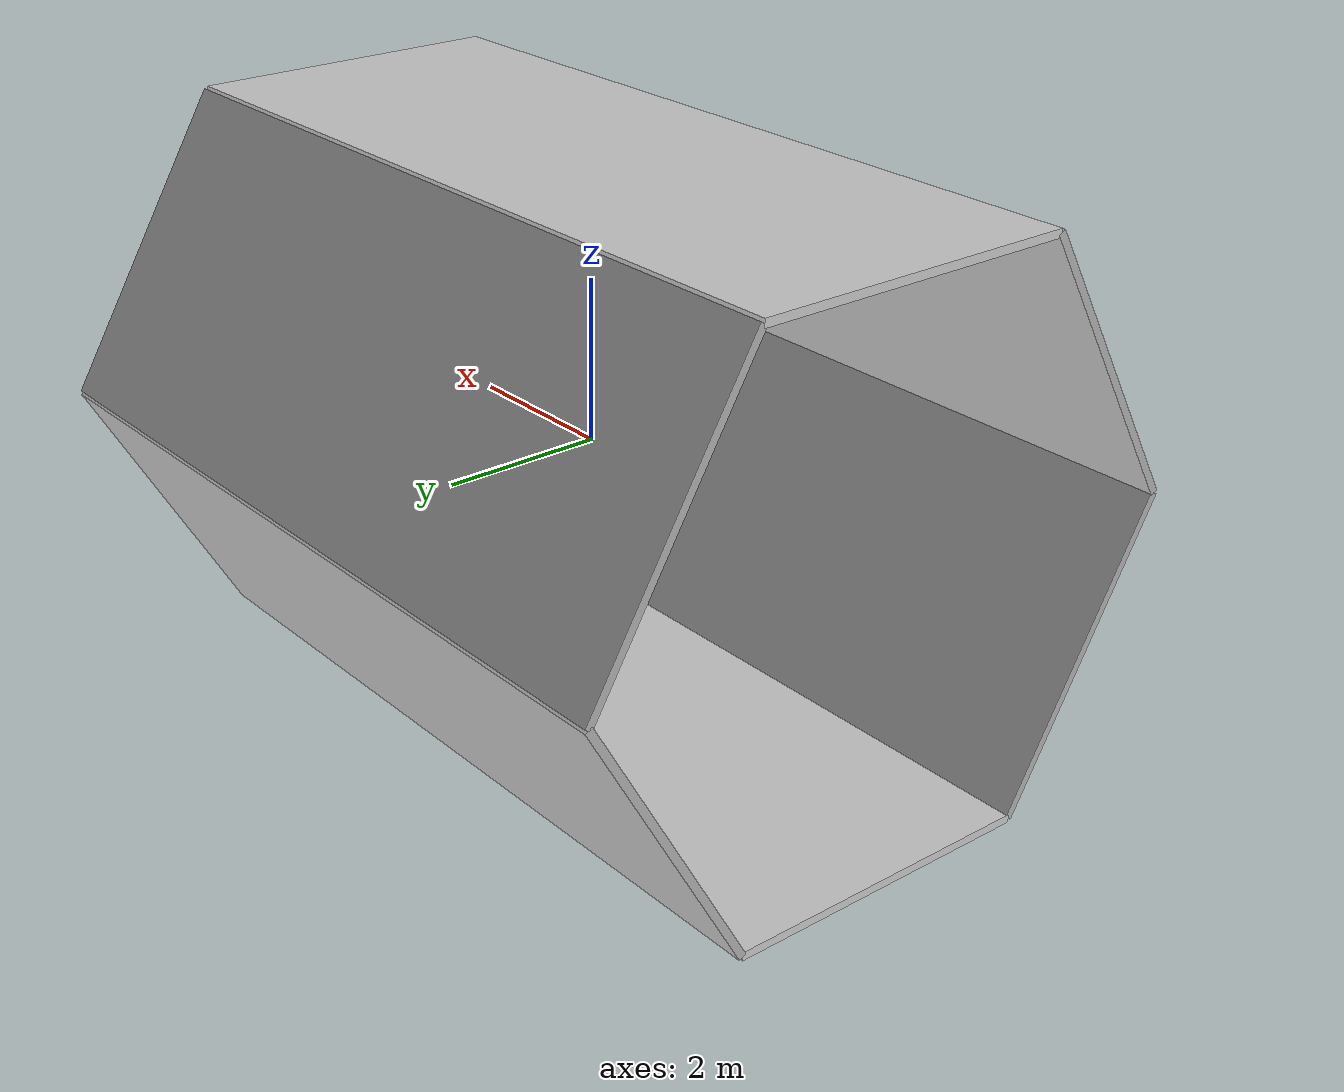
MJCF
<mujoco model="big_hex_module">
  <compiler angle="degree" coordinate="local" inertiafromgeom="true"/>
  <option integrator="RK4" timestep="0.01" gravity="0 0 0"/>

  <worldbody>
    <light diffuse=".5 .5 .5" pos="0 0 5" dir="0 0 -1"/>

    <!-- BIG Hexagonal Hallway (Doubled the spacing) -->
    <!-- Size 5 is length, Size 2 is the width of each wall panel -->
    <geom name="wall_bottom" type="box" size="5 2 0.05" pos="0 0 -3.46" euler="0 0 0" rgba="0.8 0.8 0.8 1"/>
    <geom name="wall_top"    type="box" size="5 2 0.05" pos="0 0 3.46"  euler="180 0 0" rgba="0.8 0.8 0.8 1"/>

    <geom name="wall_br"     type="box" size="5 2 0.05" pos="0 3.0 -1.73"  euler="60 0 0" rgba="0.7 0.7 0.7 1"/>
    <geom name="wall_tr"     type="box" size="5 2 0.05" pos="0 3.0 1.73"   euler="120 0 0" rgba="0.7 0.7 0.7 1"/>

    <geom name="wall_bl"     type="box" size="5 2 0.05" pos="0 -3.0 -1.73" euler="-60 0 0" rgba="0.7 0.7 0.7 1"/>
    <geom name="wall_tl"     type="box" size="5 2 0.05" pos="0 -3.0 1.73"  euler="-120 0 0" rgba="0.7 0.7 0.7 1"/>

    <body name="torso" pos="0 0 0">
      <geom name="torso_geom" type="box" size="0.25 0.25 0.25" rgba="0.8 0.6 0.4 1"/>
      <joint name="root" type="free" pos="0 0 0"/>
      <site name="thruster_site" pos="0 0 0"/>
    </body>

    <site name="target_marker" type="sphere" size="0.1" rgba="1 0 0 0.3" pos="2 0 0"/>
  </worldbody>

  <actuator>
    <general name="thrust_x" site="thruster_site" gear="1 0 0 0 0 0" ctrlrange="-10 10"/>
    <general name="thrust_y" site="thruster_site" gear="0 1 0 0 0 0" ctrlrange="-10 10"/>
    <general name="thrust_z" site="thruster_site" gear="0 0 1 0 0 0" ctrlrange="-10 10"/>
    <general name="torque_x" site="thruster_site" gear="0 0 0 1 0 0" ctrlrange="-5 5"/>
  </actuator>
</mujoco>
